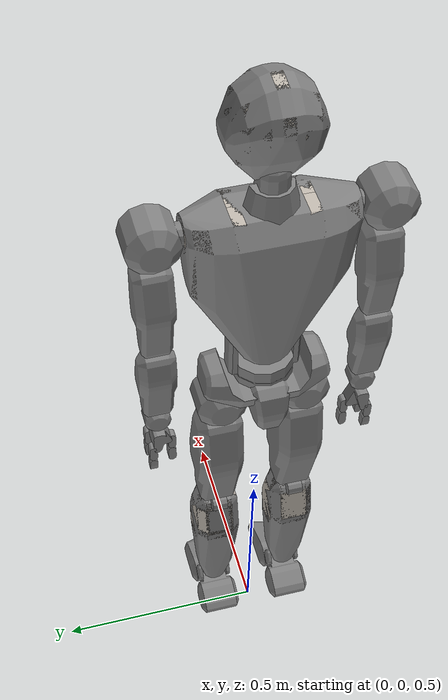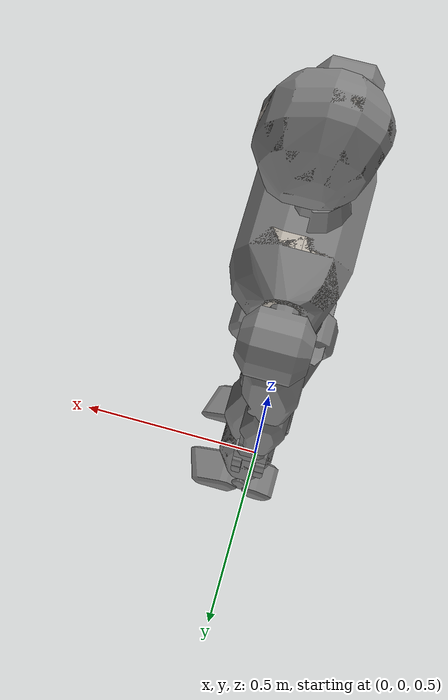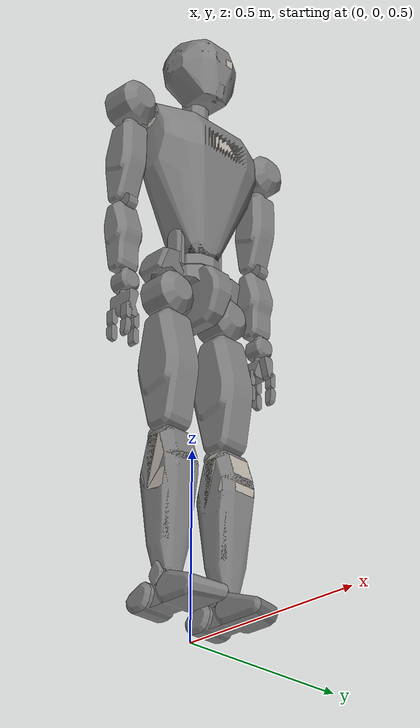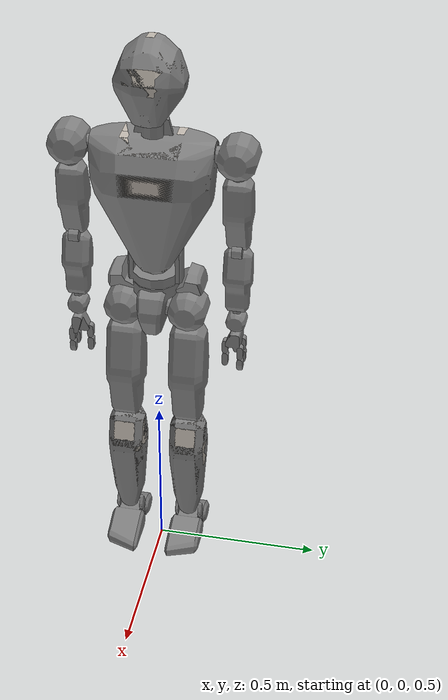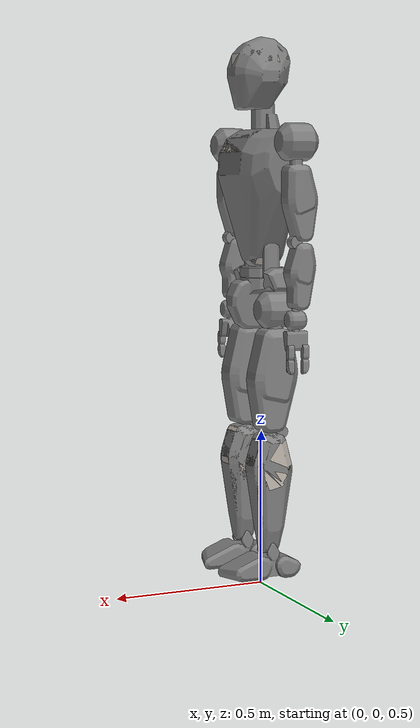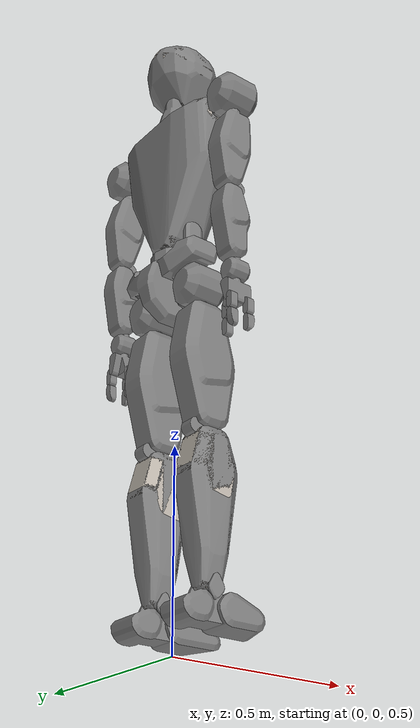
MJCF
<?xml version="1.0"?>
<mujoco model="jvrc1">

  <compiler angle="radian" meshdir="../meshes" texturedir="../meshes" />

  <size njmax="500" nconmax="100" />

  <option timestep="0.001" iterations="50" tolerance="1e-10" solver="Newton" jacobian="dense" cone="pyramidal" />

  <default>
    <geom condim="1" type="mesh" />
    <joint limited="true" damping="0.2" pos="0 0 0" />
    <motor ctrllimited="false" forcelimited="false" />
    <default class="collision">
      <geom condim="3" group="0" />
    </default>
    <default class="visual">
      <geom group="1" conaffinity="0" contype="0" />
    </default>
  </default>

  <asset>
    <!-- collision meshes -->
    <mesh name="PELVIS_col" file="convex/PELVIS_S.stl" />
    <mesh name="R_HIP_R_col" file="convex/R_HIP_R_S.stl" />
    <mesh name="R_HIP_Y_col" file="convex/R_HIP_Y_S.stl" />
    <mesh name="R_KNEE_col" file="convex/R_KNEE_S.stl" />
    <mesh name="R_ANKLE_P_col" file="convex/R_ANKLE_P_S.stl" />
    <mesh name="L_HIP_R_col" file="convex/L_HIP_R_S.stl" />
    <mesh name="L_HIP_Y_col" file="convex/L_HIP_Y_S.stl" />
    <mesh name="L_KNEE_col" file="convex/L_KNEE_S.stl" />
    <mesh name="L_ANKLE_P_col" file="convex/L_ANKLE_P_S.stl" />
    <mesh name="WAIST_Y_col" file="convex/WAIST_Y_S.stl" />
    <mesh name="WAIST_R_col" file="convex/WAIST_R_S.stl" />
    <mesh name="NECK_Y_col" file="convex/NECK_Y_S.stl" />
    <mesh name="NECK_P_col" file="convex/NECK_P_S.stl" />
    <mesh name="R_SHOULDER_P_col" file="convex/R_SHOULDER_P_S.stl" />
    <mesh name="R_SHOULDER_Y_col" file="convex/R_SHOULDER_Y_S.stl" />
    <mesh name="R_ELBOW_P_col" file="convex/R_ELBOW_P_S.stl" />
    <mesh name="R_ELBOW_Y_col" file="convex/R_ELBOW_Y_S.stl" />
    <mesh name="R_WRIST_Y_col" file="convex/R_WRIST_Y_S.stl" />
    <mesh name="R_UTHUMB_col" file="convex/R_UTHUMB_S.stl" />
    <mesh name="R_LTHUMB_col" file="convex/R_LTHUMB_S.stl" />
    <mesh name="R_UINDEX_col" file="convex/R_UINDEX_S.stl" />
    <mesh name="R_LINDEX_col" file="convex/R_LINDEX_S.stl" />
    <mesh name="R_ULITTLE_col" file="convex/R_ULITTLE_S.stl" />
    <mesh name="R_LLITTLE_col" file="convex/R_LLITTLE_S.stl" />
    <mesh name="L_SHOULDER_P_col" file="convex/L_SHOULDER_P_S.stl" />
    <mesh name="L_SHOULDER_Y_col" file="convex/L_SHOULDER_Y_S.stl" />
    <mesh name="L_ELBOW_P_col" file="convex/L_ELBOW_P_S.stl" />
    <mesh name="L_ELBOW_Y_col" file="convex/L_ELBOW_Y_S.stl" />
    <mesh name="L_WRIST_Y_col" file="convex/L_WRIST_Y_S.stl" />
    <mesh name="L_UTHUMB_col" file="convex/L_UTHUMB_S.stl" />
    <mesh name="L_LTHUMB_col" file="convex/L_LTHUMB_S.stl" />
    <mesh name="L_UINDEX_col" file="convex/L_UINDEX_S.stl" />
    <mesh name="L_LINDEX_col" file="convex/L_LINDEX_S.stl" />
    <mesh name="L_ULITTLE_col" file="convex/L_ULITTLE_S.stl" />
    <mesh name="L_LLITTLE_col" file="convex/L_LLITTLE_S.stl" />

    <!-- visualization meshes -->
    <!-- NECK_P, WAIST_R, KNEE  were manually split in 2 -->
    <mesh name="PELVIS_vis" file="visual/PELVIS_S.obj" />
    <mesh name="R_HIP_R_vis" file="visual/R_HIP_R_S.obj" />
    <mesh name="R_HIP_Y_vis" file="visual/R_HIP_Y_S.obj" />
    <mesh name="R_KNEE1_vis" file="visual/R_KNEE_S_1.obj" />
    <mesh name="R_KNEE2_vis" file="visual/R_KNEE_S_2.obj" />
    <mesh name="R_ANKLE_P_vis" file="visual/R_ANKLE_P_S.obj" />
    <mesh name="L_HIP_R_vis" file="visual/L_HIP_R_S.obj" />
    <mesh name="L_HIP_Y_vis" file="visual/L_HIP_Y_S.obj" />
    <mesh name="L_KNEE1_vis" file="visual/L_KNEE_S_1.obj" />
    <mesh name="L_KNEE2_vis" file="visual/L_KNEE_S_2.obj" />
    <mesh name="L_ANKLE_P_vis" file="visual/L_ANKLE_P_S.obj" />
    <mesh name="WAIST_Y_vis" file="visual/WAIST_Y_S.obj" />
    <mesh name="WAIST_R_F_vis" file="visual/WAIST_R_S_F.obj" />
    <mesh name="WAIST_R_R_vis" file="visual/WAIST_R_S_R.obj" />
    <mesh name="NECK_Y_vis" file="visual/NECK_Y_S.obj" />
    <mesh name="NECK_P_F_vis" file="visual/NECK_P_S_F.obj" />
    <mesh name="NECK_P_R_vis" file="visual/NECK_P_S_R.obj" />
    <mesh name="R_SHOULDER_P_vis" file="visual/R_SHOULDER_P_S.obj" />
    <mesh name="R_SHOULDER_Y_vis" file="visual/R_SHOULDER_Y_S.obj" />
    <mesh name="R_ELBOW_P_vis" file="visual/R_ELBOW_P_S.obj" />
    <mesh name="R_ELBOW_Y_vis" file="visual/R_ELBOW_Y_S.obj" />
    <mesh name="R_WRIST_Y_vis" file="visual/R_WRIST_Y_S.obj" />
    <mesh name="R_UTHUMB_vis" file="visual/R_UTHUMB_S.obj" />
    <mesh name="R_LTHUMB_vis" file="visual/R_LTHUMB_S.obj" />
    <mesh name="R_UINDEX_vis" file="visual/R_UINDEX_S.obj" />
    <mesh name="R_LINDEX_vis" file="visual/R_LINDEX_S.obj" />
    <mesh name="R_ULITTLE_vis" file="visual/R_ULITTLE_S.obj" />
    <mesh name="R_LLITTLE_vis" file="visual/R_LLITTLE_S.obj" />
    <mesh name="L_SHOULDER_P_vis" file="visual/L_SHOULDER_P_S.obj" />
    <mesh name="L_SHOULDER_Y_vis" file="visual/L_SHOULDER_Y_S.obj" />
    <mesh name="L_ELBOW_P_vis" file="visual/L_ELBOW_P_S.obj" />
    <mesh name="L_ELBOW_Y_vis" file="visual/L_ELBOW_Y_S.obj" />
    <mesh name="L_WRIST_Y_vis" file="visual/L_WRIST_Y_S.obj" />
    <mesh name="L_UTHUMB_vis" file="visual/L_UTHUMB_S.obj" />
    <mesh name="L_LTHUMB_vis" file="visual/L_LTHUMB_S.obj" />
    <mesh name="L_UINDEX_vis" file="visual/L_UINDEX_S.obj" />
    <mesh name="L_LINDEX_vis" file="visual/L_LINDEX_S.obj" />
    <mesh name="L_ULITTLE_vis" file="visual/L_ULITTLE_S.obj" />
    <mesh name="L_LLITTLE_vis" file="visual/L_LLITTLE_S.obj" />

    <!-- texture png -->
    <texture name="Map01"   file="texture/Map01_siri.png" type="2d" />
    <texture name="Map03_F" file="texture/Map03_douF.png" type="2d" />
    <texture name="Map03_R" file="texture/Map03_douR.png" type="2d" />
    <texture name="Map05_F" file="texture/Map05_atamaF.png" type="2d" />
    <texture name="Map05_R" file="texture/Map05_atamaR.png" type="2d" />
    <texture name="Map06"   file="texture/Map06_migikata.png" type="2d" />
    <texture name="Map07"   file="texture/Map07_migijowan.png" type="2d" />
    <texture name="Map08"   file="texture/Map08_migikawan.png" type="2d" />
    <texture name="Map09"   file="texture/Map09_migitekubi.png" type="2d" />
    <texture name="Map10"   file="texture/Map10_migitenohira.png" type="2d" />
    <texture name="Map12"   file="texture/Map12_migiisshisaki.png" type="2d" />
    <texture name="Map14"   file="texture/Map14_miginishisaki.png" type="2d" />
    <texture name="Map28"   file="texture/Map28_migimata.png" type="2d" />
    <texture name="Map29"   file="texture/Map29_migidaitai.png" type="2d" />
    <texture name="Map30"   file="texture/Map30_migisune.png" type="2d" />
    <texture name="Map31"   file="texture/Map31_migiashikubi.png" type="2d" />
    <texture name="Map32"   file="texture/Map32_migiashi.png" type="2d" />

    <!-- materials -->
    <material name="PELVIS" texture="Map01" shininess="1" specular="1" />
    <material name="WAIST_R_F" texture="Map03_F" shininess="1" specular="1" />
    <material name="WAIST_R_R" texture="Map03_R" shininess="1" specular="1" />
    <material name="NECK_P_F" texture="Map05_F" shininess="1" specular="1" />
    <material name="NECK_P_R" texture="Map05_R" shininess="1" specular="1" />
    <material name="SHOULDER_P" texture="Map06" shininess="1" specular="1" />
    <material name="SHOULDER_Y" texture="Map07" shininess="1" specular="1" />
    <material name="ELBOW_P" texture="Map08" shininess="1" specular="1" />
    <material name="ELBOW_Y" texture="Map09" shininess="1" specular="1" />
    <material name="WRIST_Y" texture="Map10" shininess="1" specular="1" />
    <material name="THUMB" texture="Map12" shininess="1" specular="1" />
    <material name="LITTLE" texture="Map14" shininess="1" specular="1" />
    <material name="INDEX" texture="Map14" shininess="1" specular="1" />
    <material name="HIP_R" texture="Map28" shininess="1" specular="1" />
    <material name="HIP_Y" texture="Map29" shininess="1" specular="1" />
    <material name="KNEE1" texture="Map30" shininess="1" specular="1" />
    <material name="KNEE2" texture="Map31" shininess="1" specular="1" />
    <material name="ANKLE" texture="Map32" shininess="1" specular="1" />
  </asset>

  <contact>
    <exclude body1="PELVIS_S" body2="R_HIP_R_S" />
    <exclude body1="PELVIS_S" body2="R_HIP_Y_S" />
    <exclude body1="PELVIS_S" body2="L_HIP_R_S" />
    <exclude body1="PELVIS_S" body2="L_HIP_Y_S" />
    <exclude body1="PELVIS_S" body2="WAIST_R_S" />
    <exclude body1="R_KNEE_S" body2="R_ANKLE_P_S" />
    <exclude body1="L_KNEE_S" body2="L_ANKLE_P_S" />
    <exclude body1="WAIST_Y_S" body2="WAIST_R_S" />
    <exclude body1="NECK_Y_S" body2="NECK_P_S" />
    <exclude body1="R_SHOULDER_P_S" body2="R_SHOULDER_Y_S" />
    <exclude body1="R_ELBOW_Y_S" body2="R_WRIST_Y_S" />
    <exclude body1="L_SHOULDER_P_S" body2="L_SHOULDER_Y_S" />
    <exclude body1="L_ELBOW_Y_S" body2="L_WRIST_Y_S" />
  </contact>

  <worldbody>
    <light directional="false" diffuse="0.2 0.2 0.2" specular="0 0 0" pos="0 0 2" dir="0 0 -1" castshadow="false" />
    <light mode="targetbodycom" target="PELVIS_S" directional="false" diffuse=".8 .8 .8" specular="0.3 0.3 0.3" pos="0 0 4.0" dir="0 0 -1" />
    <!-- pelvis -->
    <body name="PELVIS_S" pos="0 0 1.4">
      <freejoint name="root" />
      <geom class="collision" quat="0.707105 0 0 0.707108" mesh="PELVIS_col" />
      <geom class="visual" quat="0.707105 0 0 0.707108" mesh="PELVIS_vis" material="PELVIS" />
      <inertial pos="-0.01 0 0.034" mass="10" diaginertia="0.08958333333333333 0.08958333333333333 0.11249999999999999" />
      <!-- site for root imu sensor -->
      <site name="imu" size="0.01" pos="0 0 0" />
      <!-- right leg -->
      <body name="R_HIP_P_S" pos="0 -0.096 0">
        <inertial pos="0 0 0" mass="1" diaginertia="0.00196 0.00196 0.00196" />
        <joint name="R_HIP_P" axis="0 1 0" range="-2.0944 0.785398" armature="0.1925" />
        <body name="R_HIP_R_S" pos="0 0 0">
          <inertial pos="0 0 0" mass="1" diaginertia="0.00196 0.00196 0.00196" />
          <joint name="R_HIP_R" axis="1 0 0" range="-0.785398 0.349066" armature="0.1813" />
          <geom class="collision" quat="0.707105 0 0 0.707108" mesh="R_HIP_R_col" />
          <geom class="visual" quat="0.707105 0 0 0.707108" mesh="R_HIP_R_vis" material="HIP_R" />
          <body name="R_HIP_Y_S" pos="0 0 0">
            <inertial pos="0.01 0 -0.22" quat="0.707107 0 0 0.707107" mass="3" diaginertia="0.034525 0.031925 0.00865" />
            <joint name="R_HIP_Y" axis="0 0 1" range="-0.523599 0.785398" armature="0.1237" />
            <geom class="collision" quat="0.707105 0 0 0.707108" mesh="R_HIP_Y_col" />
            <geom class="visual" quat="0.707105 0 0 0.707108" mesh="R_HIP_Y_vis" material="HIP_Y" />
            <body name="R_KNEE_S" pos="-0.02 0 -0.389">
              <inertial pos="0.04 0 -0.16" quat="0.707107 0 0 0.707107" mass="3" diaginertia="0.034525 0.031925 0.00865" />
              <joint name="R_KNEE" axis="0 1 0" range="0 2.61799" armature="0.1305" />
              <geom class="collision" mesh="R_KNEE_col" />
              <geom class="visual" mesh="R_KNEE1_vis" material="KNEE1" />
              <geom class="visual" mesh="R_KNEE2_vis" material="KNEE2" />
              <body name="R_ANKLE_R_S" pos="0.04 0 -0.357">
                <inertial pos="0 0 0" mass="1" diaginertia="0.00064 0.00064 0.00064" />
                <joint name="R_ANKLE_R" axis="1 0 0" range="-0.610865 0.785398" armature="0.0653" />
                <body name="R_ANKLE_P_S" pos="0 0 0">
                  <inertial pos="0.03 0 -0.07" quat="0 0.707107 0 0.707107" mass="1.5" diaginertia="0.00621667 0.00561667 0.00141667" />
                  <joint name="R_ANKLE_P" axis="0 1 0" range="-1.48353 0.959931" armature="0.1337" />
                  <geom class="collision" quat="0.707105 0 0 0.707108" mesh="R_ANKLE_P_col" />
                  <geom class="visual" quat="0.707105 0 0 0.707108" mesh="R_ANKLE_P_vis" material="ANKLE" />
                  <!-- site for right foot f/t sensor -->
                  <site name="rf_force" size="0.01" pos="0.0 0.0 0.0" />
                </body>
              </body>
            </body>
          </body>
        </body>
      </body>
      <!-- left leg -->
      <body name="L_HIP_P_S" pos="0 0.096 0">
        <inertial pos="0 0 0" mass="1" diaginertia="0.00196 0.00196 0.00196" />
        <joint name="L_HIP_P" axis="0 1 0" range="-2.0944 0.785398" armature="0.1925" />
        <body name="L_HIP_R_S" pos="0 0 0">
          <inertial pos="0 0 0" mass="1" diaginertia="0.00196 0.00196 0.00196" />
          <joint name="L_HIP_R" axis="1 0 0" range="-0.349066 0.785398" armature="0.1813" />
          <geom class="collision" quat="0.707105 0 0 0.707108" mesh="L_HIP_R_col" />
          <geom class="visual" quat="0.707105 0 0 0.707108" mesh="L_HIP_R_vis" material="HIP_R" />
          <body name="L_HIP_Y_S" pos="0 0 0">
            <inertial pos="0.01 0 -0.22" quat="0.707107 0 0 0.707107" mass="3" diaginertia="0.034525 0.031925 0.00865" />
            <joint name="L_HIP_Y" axis="0 0 1" range="-0.785398 0.523599" armature="0.1237" />
            <geom class="collision" quat="0.707105 0 0 0.707108" mesh="L_HIP_Y_col" />
            <geom class="visual" quat="0.707105 0 0 0.707108" mesh="L_HIP_Y_vis" material="HIP_Y" />
            <body name="L_KNEE_S" pos="-0.02 0 -0.389">
              <inertial pos="0.04 0 -0.16" quat="0.707107 0 0 0.707107" mass="3" diaginertia="0.034525 0.031925 0.00865" />
              <joint name="L_KNEE" axis="0 1 0" range="0 2.61799" armature="0.1305" />
              <geom class="collision" mesh="L_KNEE_col" />
              <geom class="visual" mesh="L_KNEE1_vis" material="KNEE1" />
              <geom class="visual" mesh="L_KNEE2_vis" material="KNEE2" />
              <body name="L_ANKLE_R_S" pos="0.04 0 -0.357">
                <inertial pos="0 0 0" mass="1" diaginertia="0.00064 0.00064 0.00064" />
                <joint name="L_ANKLE_R" axis="1 0 0" range="-0.785398 0.610865" armature="0.0653" />
                <body name="L_ANKLE_P_S" pos="0 0 0">
                  <inertial pos="0.03 0 -0.07" quat="0 0.707107 0 0.707107" mass="1.5" diaginertia="0.00621667 0.00561667 0.00141667" />
                  <joint name="L_ANKLE_P" axis="0 1 0" range="-1.48353 0.959931" armature="0.1337" />
                  <geom class="collision" quat="0.707105 0 0 0.707108" mesh="L_ANKLE_P_col" />
                  <geom class="visual" quat="0.707105 0 0 0.707108" mesh="L_ANKLE_P_vis" material="ANKLE" />
                  <!-- site for left foot f/t sensor -->
                  <site name="lf_force" size="0.01" pos="0.0 0.0 0.0" />
                </body>
              </body>
            </body>
          </body>
        </body>
      </body>
      <!-- chest -->
      <body name="WAIST_Y_S" pos="0 0 0.192">
        <inertial pos="0 0 -0.07" quat="0.5 0.5 -0.5 0.5" mass="1" diaginertia="0.0032 0.00173333 0.00173333" />
        <joint name="WAIST_Y" axis="0 0 1" range="-0.785398 0.785398" armature="0.1221" />
        <geom class="collision" quat="0.707105 0 0 0.707108" mesh="WAIST_Y_col" />
        <geom class="visual" quat="0.707105 0 0 0.707108" mesh="WAIST_Y_vis" />
        <body name="WAIST_P_S" pos="0 0 0">
          <inertial pos="0 0 0" mass="1" diaginertia="0.00245 0.002425 0.002425" />
          <joint name="WAIST_P" axis="0 1 0" range="-0.523599 1.0472" armature="0.1813" />
          <body name="WAIST_R_S" pos="0 0 0">
            <inertial pos="0.02 0 0.24" quat="0.707107 0.707107 0 0" mass="10" diaginertia="0.157083 0.136667 0.101083" />
            <joint name="WAIST_R" axis="1 0 0" range="-0.872665 0.872665" armature="0.1054" />
            <geom class="collision" mesh="WAIST_R_col" />
            <geom class="visual" mesh="WAIST_R_F_vis" material="WAIST_R_F" />
            <geom class="visual" mesh="WAIST_R_R_vis" material="WAIST_R_R" />
            <!-- head -->
            <body name="NECK_Y_S" pos="-0.003 0 0.453">
              <inertial pos="0 0 -0.05" mass="0.5" diaginertia="0.000729167 0.000729167 0.000625" />
              <joint name="NECK_Y" axis="0 0 1" range="-1.22173 1.22173" armature="0.0567" />
              <geom class="collision" quat="0.707105 0 0 0.707108" mesh="NECK_Y_col" />
              <geom class="visual" quat="0.707105 0 0 0.707108" mesh="NECK_Y_vis" />
              <body name="NECK_R_S" pos="0 0 0">
                <inertial pos="0 0 0" mass="0.5" diaginertia="0.0005 0.0005 0.0005" />
                <joint name="NECK_R" axis="1 0 0" range="-0.872665 0.872665" armature="0.0596" />
                <body name="NECK_P_S" pos="0 0 0">
                  <inertial pos="0.01 0 0.11" mass="2" diaginertia="0.00968 0.00968 0.00968" />
                  <joint name="NECK_P" axis="0 1 0" range="-0.872665 1.0472" armature="0.0596" />
                  <geom class="collision" mesh="NECK_P_col" />
                  <geom class="visual" mesh="NECK_P_F_vis" material="NECK_P_F" />
                  <geom class="visual" mesh="NECK_P_R_vis" material="NECK_P_R" />
                </body>
              </body>
            </body>
            <!-- right arm -->
            <body name="R_SHOULDER_P_S" pos="0 -0.24 0.33">
              <inertial pos="0 0 0" mass="1" diaginertia="0.00196 0.00196 0.00196" />
              <joint name="R_SHOULDER_P" axis="0 1 0" range="-3.14159 1.0472" armature="0.1210" />
              <geom class="collision" quat="0.707105 0 0 0.707108" mesh="R_SHOULDER_P_col" />
              <geom class="visual" quat="0.707105 0 0 0.707108" mesh="R_SHOULDER_P_vis" material="SHOULDER_P" />
              <body name="R_SHOULDER_R_S" pos="0 0 0">
                <inertial pos="0 0 0" mass="1" diaginertia="0.00196 0.00196 0.00196" />
                <joint name="R_SHOULDER_R" axis="1 0 0" range="-1.74533 0.174533" armature="0.1210" />
                <body name="R_SHOULDER_Y_S" pos="0 0 0">
                  <inertial pos="-0.01 0 -0.19" quat="0.707107 0 0 0.707107" mass="2" diaginertia="0.0146 0.01365 0.00635" />
                  <joint name="R_SHOULDER_Y" axis="0 0 1" range="-1.5708 1.5708" armature="0.1231" />
                  <geom class="collision" quat="0.707105 0 0 0.707108" mesh="R_SHOULDER_Y_col" />
                  <geom class="visual" quat="0.707105 0 0 0.707108" mesh="R_SHOULDER_Y_vis" material="SHOULDER_Y" />
                  <body name="R_ELBOW_P_S" pos="0.004 0 -0.305">
                    <inertial pos="-0.02 0 -0.1" mass="1" diaginertia="0.010675 0.010675 0.0027" />
                    <joint name="R_ELBOW_P" axis="0 1 0" range="-2.53073 0" armature="0.1054" />
                    <geom class="collision" quat="0.707105 0 0 0.707108" mesh="R_ELBOW_P_col" />
                    <geom class="visual" quat="0.707105 0 0 0.707108" mesh="R_ELBOW_P_vis" material="ELBOW_P" />
                    <body name="R_ELBOW_Y_S" pos="-0.004 0 -0.239">
                      <inertial pos="0 0 0" mass="1" diaginertia="0.00064 0.00064 0.00064" />
                      <joint name="R_ELBOW_Y" axis="0 0 1" range="-1.91986 1.91986" armature="0.1240" />
                      <geom class="collision" quat="0.707105 0 0 0.707108" mesh="R_ELBOW_Y_col" />
                      <geom class="visual" quat="0.707105 0 0 0.707108" mesh="R_ELBOW_Y_vis" material="ELBOW_Y" />
                      <body name="R_WRIST_R_S" pos="0 0 0">
                        <inertial pos="0 0 0" mass="0.5" diaginertia="0.00032 0.00032 0.00032" />
                        <joint name="R_WRIST_R" axis="1 0 0" range="-1.91986 1.91986" armature="0.0876" />
                        <body name="R_WRIST_Y_S" pos="0 0 0">
                          <inertial pos="0 0.01 -0.06" quat="0.707107 0 0 0.707107" mass="0.5" diaginertia="0.0007625 0.0004625 0.0004625" />
                          <joint name="R_WRIST_Y" axis="0 0 1" range="-2.61799 2.61799" armature="0.1240" />
                          <geom class="collision" quat="0.707105 0 0 0.707108" mesh="R_WRIST_Y_col" />
                          <geom class="visual" quat="0.707105 0 0 0.707108" mesh="R_WRIST_Y_vis" material="WRIST_Y" />
                          <!-- site for right hand f/t sensor -->
                          <site name="rh_force" size="0.01" pos="0.0 0.0 0.0" />
                          <!-- right hand -->
                          <body name="R_UTHUMB_S" pos="0 0.033 -0.084">
                            <inertial pos="0 0 -0.015" mass="0.2" diaginertia="6.16667e-05 6.16667e-05 2.66667e-05" />
                            <joint name="R_UTHUMB" axis="1 0 0" range="-0.785398 0.785398" armature="0.0130" />
                            <geom class="collision" quat="0.707105 0 0 0.707108" mesh="R_UTHUMB_col" />
                            <geom class="visual" quat="0.707105 0 0 0.707108" mesh="R_UTHUMB_vis" />
                            <body name="R_LTHUMB_S" pos="0 0 -0.045">
                              <inertial pos="0 0 -0.015" mass="0.2" diaginertia="6.16667e-05 6.16667e-05 2.66667e-05" />
                              <joint name="R_LTHUMB" axis="1 0 0" range="-2.3562 2.3562" armature="0.0320" />
                              <geom class="collision" quat="0.707105 0 0 0.707108" mesh="R_LTHUMB_col" />
                              <geom class="visual" quat="0.707105 0 0 0.707108" mesh="R_LTHUMB_vis" material="THUMB" />
                            </body>
                          </body>
                          <body name="R_UINDEX_S" pos="0.025 -0.016 -0.084">
                            <inertial pos="0 0 -0.015" mass="0.2" diaginertia="6.16667e-05 6.16667e-05 2.66667e-05" />
                            <joint name="R_UINDEX" axis="1 0 0" range="-0.7854 0.7854" armature="0.0073" />
                            <geom class="collision" quat="0.707105 0 0 0.707108" mesh="R_UINDEX_col" />
                            <geom class="visual" quat="0.707105 0 0 0.707108" mesh="R_UINDEX_vis" />
                            <body name="R_LINDEX_S" pos="0 0 -0.045">
                              <inertial pos="0 0 -0.015" mass="0.2" diaginertia="6.16667e-05 6.16667e-05 2.66667e-05" />
                              <joint name="R_LINDEX" axis="1 0 0" range="-2.3562 2.3562" armature="0.0039" />
                              <geom class="collision" quat="0.707105 0 0 0.707108" mesh="R_LINDEX_col" />
                              <geom class="visual" quat="0.707105 0 0 0.707108" mesh="R_LINDEX_vis" material="INDEX" />
                            </body>
                          </body>
                          <body name="R_ULITTLE_S" pos="-0.025 -0.016 -0.084">
                            <inertial pos="0 0 -0.015" mass="0.2" diaginertia="6.16667e-05 6.16667e-05 2.66667e-05" />
                            <joint name="R_ULITTLE" axis="1 0 0" range="-0.7854 0.7854" armature="0.0073" />
                            <geom class="collision" quat="0.707105 0 0 0.707108" mesh="R_ULITTLE_col" />
                            <geom class="visual" quat="0.707105 0 0 0.707108" mesh="R_ULITTLE_vis" />
                            <body name="R_LLITTLE_S" pos="0 0 -0.045">
                              <inertial pos="0 0 -0.015" mass="0.2" diaginertia="6.16667e-05 6.16667e-05 2.66667e-05" />
                              <joint name="R_LLITTLE" axis="1 0 0" range="-2.3562 2.3562" armature="0.0039" />
                              <geom class="collision" quat="0.707105 0 0 0.707108" mesh="R_LLITTLE_col" />
                              <geom class="visual" quat="0.707105 0 0 0.707108" mesh="R_LLITTLE_vis" material="LITTLE" />
                            </body>
                          </body>
                        </body>
                      </body>
                    </body>
                  </body>
                </body>
              </body>
            </body>
            <!-- left arm -->
            <body name="L_SHOULDER_P_S" pos="0 0.24 0.33">
              <inertial pos="0 0 0" mass="1" diaginertia="0.00196 0.00196 0.00196" />
              <joint name="L_SHOULDER_P" axis="0 1 0" range="-3.14159 1.0472" armature="0.1210" />
              <geom class="collision" quat="0.707105 0 0 0.707108" mesh="L_SHOULDER_P_col" />
              <geom class="visual" quat="0.707105 0 0 0.707108" mesh="L_SHOULDER_P_vis" material="SHOULDER_P" />
              <body name="L_SHOULDER_R_S" pos="0 0 0">
                <inertial pos="0 0 0" mass="1" diaginertia="0.00196 0.00196 0.00196" />
                <joint name="L_SHOULDER_R" axis="1 0 0" range="-0.174533 1.74533" armature="0.1210" />
                <body name="L_SHOULDER_Y_S" pos="0 0 0">
                  <inertial pos="-0.01 0 -0.19" quat="0.707107 0 0 0.707107" mass="2" diaginertia="0.0146 0.01365 0.00635" />
                  <joint name="L_SHOULDER_Y" axis="0 0 1" range="-1.5708 1.5708" armature="0.1231" />
                  <geom class="collision" quat="0.707105 0 0 0.707108" mesh="L_SHOULDER_Y_col" />
                  <geom class="visual" quat="0.707105 0 0 0.707108" mesh="L_SHOULDER_Y_vis" material="SHOULDER_Y" />
                  <body name="L_ELBOW_P_S" pos="0.004 0 -0.305">
                    <inertial pos="-0.02 0 -0.1" mass="1" diaginertia="0.010675 0.010675 0.0027" />
                    <joint name="L_ELBOW_P" axis="0 1 0" range="-2.53073 0" armature="0.1054" />
                    <geom class="collision" quat="0.707105 0 0 0.707108" mesh="L_ELBOW_P_col" />
                    <geom class="visual" quat="0.707105 0 0 0.707108" mesh="L_ELBOW_P_vis" material="ELBOW_P" />
                    <body name="L_ELBOW_Y_S" pos="-0.004 0 -0.239">
                      <inertial pos="0 0 0" mass="1" diaginertia="0.00064 0.00064 0.00064" />
                      <joint name="L_ELBOW_Y" axis="0 0 1" range="-1.91986 1.91986" armature="0.1240" />
                      <geom class="collision" quat="0.707105 0 0 0.707108" mesh="L_ELBOW_Y_col" />
                      <geom class="visual" quat="0.707105 0 0 0.707108" mesh="L_ELBOW_Y_vis" material="ELBOW_Y" />
                      <body name="L_WRIST_R_S" pos="0 0 0">
                        <inertial pos="0 0 0" mass="0.5" diaginertia="0.00032 0.00032 0.00032" />
                        <joint name="L_WRIST_R" axis="1 0 0" range="-1.91986 1.91986" armature="0.0876" />
                        <body name="L_WRIST_Y_S" pos="0 0 0">
                          <inertial pos="0 -0.01 -0.06" quat="0.707107 0 0 0.707107" mass="0.5" diaginertia="0.0007625 0.0004625 0.0004625" />
                          <joint name="L_WRIST_Y" axis="0 0 1" range="-2.61799 2.61799" armature="0.1240" />
                          <geom class="collision" quat="0.707105 0 0 0.707108" mesh="L_WRIST_Y_col" />
                          <geom class="visual" quat="0.707105 0 0 0.707108" mesh="L_WRIST_Y_vis" material="WRIST_Y" />
                          <!-- site for left hand f/t sensor -->
                          <site name="lh_force" size="0.01" pos="0.0 0.0 0.0" />
                          <!-- left hand -->
                          <body name="L_UTHUMB_S" pos="0 -0.033 -0.084">
                            <inertial pos="0 0 -0.015" mass="0.2" diaginertia="6.16667e-05 6.16667e-05 2.66667e-05" />
                            <joint name="L_UTHUMB" axis="1 0 0" range="-0.785398 0.785398" armature="0.0130" />
                            <geom class="collision" quat="0.707105 0 0 0.707108" mesh="L_UTHUMB_col" />
                            <geom class="visual" quat="0.707105 0 0 0.707108" mesh="L_UTHUMB_vis" />
                            <body name="L_LTHUMB_S" pos="0 0 -0.045">
                              <inertial pos="0 0 -0.015" mass="0.2" diaginertia="6.16667e-05 6.16667e-05 2.66667e-05" />
                              <joint name="L_LTHUMB" axis="1 0 0" range="-2.3562 2.3562" armature="0.0320" />
                              <geom class="collision" quat="0.707105 0 0 0.707108" mesh="L_LTHUMB_col" />
                              <geom class="visual" quat="0.707105 0 0 0.707108" mesh="L_LTHUMB_vis" material="THUMB" />
                            </body>
                          </body>
                          <body name="L_UINDEX_S" pos="0.025 0.016 -0.084">
                            <inertial pos="0 0 -0.015" mass="0.2" diaginertia="6.16667e-05 6.16667e-05 2.66667e-05" />
                            <joint name="L_UINDEX" axis="1 0 0" range="-0.7854 0.7854" armature="0.0073" />
                            <geom class="collision" quat="0.707105 0 0 0.707108" mesh="L_UINDEX_col" />
                            <geom class="visual" quat="0.707105 0 0 0.707108" mesh="L_UINDEX_vis" />
                            <body name="L_LINDEX_S" pos="0 0 -0.045">
                              <inertial pos="0 0 -0.015" mass="0.2" diaginertia="6.16667e-05 6.16667e-05 2.66667e-05" />
                              <joint name="L_LINDEX" axis="1 0 0" range="-2.3562 2.3562" armature="0.0039" />
                              <geom class="collision" quat="0.707105 0 0 0.707108" mesh="L_LINDEX_col" />
                              <geom class="visual" quat="0.707105 0 0 0.707108" mesh="L_LINDEX_vis" material="INDEX" />
                            </body>
                          </body>
                          <body name="L_ULITTLE_S" pos="-0.025 0.016 -0.084">
                            <inertial pos="0 0 -0.015" mass="0.2" diaginertia="6.16667e-05 6.16667e-05 2.66667e-05" />
                            <joint name="L_ULITTLE" axis="1 0 0" range="-0.7854 0.7854" armature="0.0073" />
                            <geom class="collision" quat="0.707105 0 0 0.707108" mesh="L_ULITTLE_col" />
                            <geom class="visual" quat="0.707105 0 0 0.707108" mesh="L_ULITTLE_vis" />
                            <body name="L_LLITTLE_S" pos="0 0 -0.045">
                              <inertial pos="0 0 -0.015" mass="0.2" diaginertia="6.16667e-05 6.16667e-05 2.66667e-05" />
                              <joint name="L_LLITTLE" axis="1 0 0" range="-2.3562 2.3562" armature="0.0039" />
                              <geom class="collision" quat="0.707105 0 0 0.707108" mesh="L_LLITTLE_col" />
                              <geom class="visual" quat="0.707105 0 0 0.707108" mesh="L_LLITTLE_vis" material="LITTLE" />
                            </body>
                          </body>
                        </body>
                      </body>
                    </body>
                  </body>
                </body>
              </body>
            </body>
          </body>
        </body>
      </body>
    </body>
  </worldbody>

  <equality>
    <!-- mimic joints for right gripper -->
    <joint joint1="R_LTHUMB" joint2="R_UTHUMB" polycoef="0 3 0 0 0" />
    <joint joint1="R_UINDEX" joint2="R_UTHUMB" polycoef="0 -1 0 0 0" />
    <joint joint1="R_LINDEX" joint2="R_UTHUMB" polycoef="0 -3 0 0 0" />
    <joint joint1="R_ULITTLE" joint2="R_UTHUMB" polycoef="0 -1 0 0 0" />
    <joint joint1="R_LLITTLE" joint2="R_UTHUMB" polycoef="0 -3 0 0 0" />
    <!-- mimic joints for left gripper -->
    <joint joint1="L_LTHUMB" joint2="L_UTHUMB" polycoef="0 3 0 0 0" />
    <joint joint1="L_UINDEX" joint2="L_UTHUMB" polycoef="0 -1 0 0 0" />
    <joint joint1="L_LINDEX" joint2="L_UTHUMB" polycoef="0 -3 0 0 0" />
    <joint joint1="L_ULITTLE" joint2="L_UTHUMB" polycoef="0 -1 0 0 0" />
    <joint joint1="L_LLITTLE" joint2="L_UTHUMB" polycoef="0 -3 0 0 0" />
  </equality>

  <actuator>
    <!-- right leg -->
    <motor name="R_HIP_P_motor" joint="R_HIP_P" />
    <motor name="R_HIP_R_motor" joint="R_HIP_R" />
    <motor name="R_HIP_Y_motor" joint="R_HIP_Y" />
    <motor name="R_KNEE_motor" joint="R_KNEE" />
    <motor name="R_ANKLE_R_motor" joint="R_ANKLE_R" />
    <motor name="R_ANKLE_P_motor" joint="R_ANKLE_P" />
    <!-- left leg -->
    <motor name="L_HIP_P_motor" joint="L_HIP_P" />
    <motor name="L_HIP_R_motor" joint="L_HIP_R" />
    <motor name="L_HIP_Y_motor" joint="L_HIP_Y" />
    <motor name="L_KNEE_motor" joint="L_KNEE" />
    <motor name="L_ANKLE_R_motor" joint="L_ANKLE_R" />
    <motor name="L_ANKLE_P_motor" joint="L_ANKLE_P" />
    <!-- waist -->
    <motor name="WAIST_Y_motor" joint="WAIST_Y" />
    <motor name="WAIST_P_motor" joint="WAIST_P" />
    <motor name="WAIST_R_motor" joint="WAIST_R" />
    <!-- head -->
    <motor name="NECK_Y_motor" joint="NECK_Y" />
    <motor name="NECK_R_motor" joint="NECK_R" />
    <motor name="NECK_P_motor" joint="NECK_P" />
    <!-- right arm -->
    <motor name="R_SHOULDER_P_motor" joint="R_SHOULDER_P" />
    <motor name="R_SHOULDER_R_motor" joint="R_SHOULDER_R" />
    <motor name="R_SHOULDER_Y_motor" joint="R_SHOULDER_Y" />
    <motor name="R_ELBOW_P_motor" joint="R_ELBOW_P" />
    <motor name="R_ELBOW_Y_motor" joint="R_ELBOW_Y" />
    <motor name="R_WRIST_R_motor" joint="R_WRIST_R" />
    <motor name="R_WRIST_Y_motor" joint="R_WRIST_Y" />
    <motor name="R_UTHUMB_motor" joint="R_UTHUMB" />
    <!-- left arm -->
    <motor name="L_SHOULDER_P_motor" joint="L_SHOULDER_P" />
    <motor name="L_SHOULDER_R_motor" joint="L_SHOULDER_R" />
    <motor name="L_SHOULDER_Y_motor" joint="L_SHOULDER_Y" />
    <motor name="L_ELBOW_P_motor" joint="L_ELBOW_P" />
    <motor name="L_ELBOW_Y_motor" joint="L_ELBOW_Y" />
    <motor name="L_WRIST_R_motor" joint="L_WRIST_R" />
    <motor name="L_WRIST_Y_motor" joint="L_WRIST_Y" />
    <motor name="L_UTHUMB_motor" joint="L_UTHUMB" />
  </actuator>

  <sensor>
    <!-- F/T sensors -->
    <!-- right foot -->
    <force name="RightFootForceSensor_fsensor" site="rf_force" />
    <torque name="RightFootForceSensor_tsensor" site="rf_force" />
    <!-- left foot -->
    <force name="LeftFootForceSensor_fsensor" site="lf_force" />
    <torque name="LeftFootForceSensor_tsensor" site="lf_force" />
    <!-- right hand -->
    <force name="RightHandForceSensor_fsensor" site="rh_force" />
    <torque name="RightHandForceSensor_tsensor" site="rh_force" />
    <!-- left hand -->
    <force name="LeftHandForceSensor_fsensor" site="lh_force" />
    <torque name="LeftHandForceSensor_tsensor" site="lh_force" />
    <!-- imu -->
    <gyro name="Accelerometer_gyro" site="imu" />
    <accelerometer name="Accelerometer_accelerometer" site="imu" />
  </sensor>
</mujoco>
